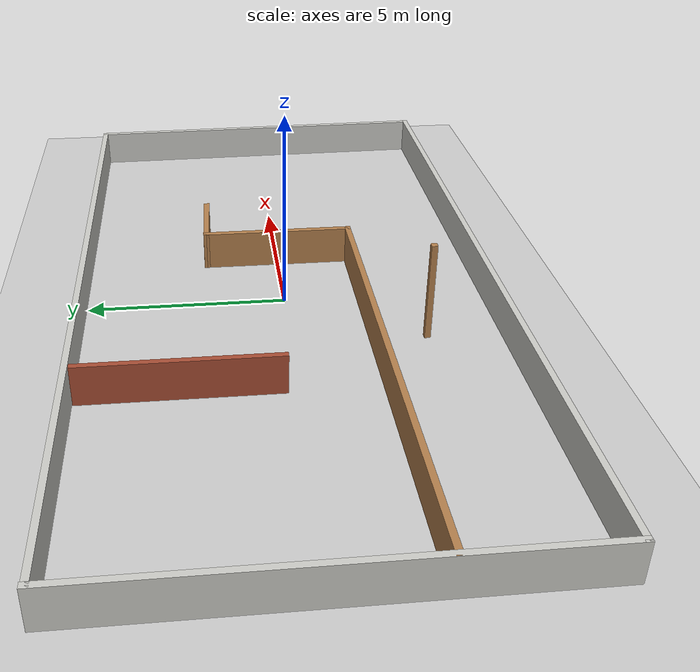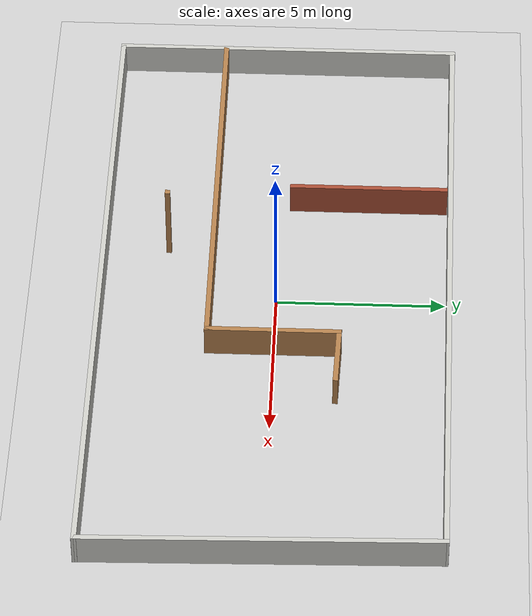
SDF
<?xml version="1.0" ?>
<sdf version="1.6">
  <world name="skid6x6_world">

    <!-- Add ground -->
    <include>
      <uri>model://ground_plane</uri>
    </include>

    <!-- Add sun -->
    <include>
      <uri>model://sun</uri>
    </include>

    <!-- Include your custom object (world2) -->
    <include>
      <uri>model://world1</uri>
      <name>world1</name>
      <pose>0 0 0 0 0 0</pose>
    </include>

    <!-- Optional scene lighting -->
    <scene>
      <ambient>0.4 0.4 0.4 1</ambient>
      <background>0.7 0.7 0.7 1</background>
      <shadows>true</shadows>
    </scene>

  </world>
</sdf>

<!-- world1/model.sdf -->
<sdf version='1.7'>
  <model name='world1'>
    <pose>-0.173189 -0.026811 0 0 -0 0</pose>
    <link name='Wall_12'>
      <collision name='Wall_12_Collision'>
        <geometry>
          <box>
            <size>10.5 0.15 1</size>
          </box>
        </geometry>
        <pose>0 0 0.5 0 -0 0</pose>
      </collision>
      <visual name='Wall_12_Visual'>
        <pose>0 0 0.5 0 -0 0</pose>
        <geometry>
          <box>
            <size>10.5 0.15 1</size>
          </box>
        </geometry>
        <material>
          <script>
            <uri>file://media/materials/scripts/gazebo.material</uri>
            <name>Gazebo/CeilingTiled</name>
          </script>
          <ambient>1 1 1 1</ambient>
        </material>
        <meta>
          <layer>0</layer>
        </meta>
      </visual>
      <pose>-10.0508 0.000811 0 0 -0 -1.5708</pose>
    </link>
    <link name='Wall_13'>
      <collision name='Wall_13_Collision'>
        <geometry>
          <box>
            <size>20.25 0.15 1</size>
          </box>
        </geometry>
        <pose>0 0 0.5 0 -0 0</pose>
      </collision>
      <visual name='Wall_13_Visual'>
        <pose>0 0 0.5 0 -0 0</pose>
        <geometry>
          <box>
            <size>20.25 0.15 1</size>
          </box>
        </geometry>
        <material>
          <script>
            <uri>file://media/materials/scripts/gazebo.material</uri>
            <name>Gazebo/CeilingTiled</name>
          </script>
          <ambient>1 1 1 1</ambient>
        </material>
        <meta>
          <layer>0</layer>
        </meta>
      </visual>
      <pose>-0.000811 -5.17419 0 0 -0 0</pose>
    </link>
    <link name='Wall_14'>
      <collision name='Wall_14_Collision'>
        <geometry>
          <box>
            <size>10.3915 0.15 1</size>
          </box>
        </geometry>
        <pose>0 0 0.5 0 -0 0</pose>
      </collision>
      <visual name='Wall_14_Visual'>
        <pose>0 0 0.5 0 -0 0</pose>
        <geometry>
          <box>
            <size>10.3915 0.15 1</size>
          </box>
        </geometry>
        <material>
          <script>
            <uri>file://media/materials/scripts/gazebo.material</uri>
            <name>Gazebo/CeilingTiled</name>
          </script>
          <ambient>1 1 1 1</ambient>
        </material>
        <meta>
          <layer>0</layer>
        </meta>
      </visual>
      <pose>9.93719 -0.054689 0 0 -0 1.59267</pose>
    </link>
    <link name='Wall_15'>
      <collision name='Wall_15_Collision'>
        <geometry>
          <box>
            <size>20.0061 0.15 1</size>
          </box>
        </geometry>
        <pose>0 0 0.5 0 -0 0</pose>
      </collision>
      <visual name='Wall_15_Visual'>
        <pose>0 0 0.5 0 -0 0</pose>
        <geometry>
          <box>
            <size>20.0061 0.15 1</size>
          </box>
        </geometry>
        <material>
          <script>
            <uri>file://media/materials/scripts/gazebo.material</uri>
            <name>Gazebo/CeilingTiled</name>
          </script>
          <ambient>1 1 1 1</ambient>
        </material>
        <meta>
          <layer>0</layer>
        </meta>
      </visual>
      <pose>-0.102811 5.11131 0 0 -0 3.13691</pose>
    </link>
    <link name='Wall_18'>
      <collision name='Wall_18_Collision'>
        <geometry>
          <box>
            <size>4.75 0.15 1</size>
          </box>
        </geometry>
        <pose>0 0 0.5 0 -0 0</pose>
      </collision>
      <visual name='Wall_18_Visual'>
        <pose>0 0 0.5 0 -0 0</pose>
        <geometry>
          <box>
            <size>4.75 0.15 1</size>
          </box>
        </geometry>
        <material>
          <script>
            <uri>file://media/materials/scripts/gazebo.material</uri>
            <name>Gazebo/Bricks</name>
          </script>
          <ambient>1 1 1 1</ambient>
        </material>
        <meta>
          <layer>0</layer>
        </meta>
      </visual>
      <pose>-3.92381 2.66281 0 0 -0 1.5708</pose>
    </link>
    <link name='Wall_20'>
      <collision name='Wall_20_Collision'>
        <geometry>
          <box>
            <size>12.25 0.15 1</size>
          </box>
        </geometry>
        <pose>0 0 0.5 0 -0 0</pose>
      </collision>
      <visual name='Wall_20_Visual'>
        <pose>0 0 0.5 0 -0 0</pose>
        <geometry>
          <box>
            <size>12.25 0.15 1</size>
          </box>
        </geometry>
        <material>
          <script>
            <uri>file://media/materials/scripts/gazebo.material</uri>
            <name>Gazebo/Wood</name>
          </script>
          <ambient>1 1 1 1</ambient>
        </material>
        <meta>
          <layer>0</layer>
        </meta>
      </visual>
      <pose>-3.99181 -1.93219 0 0 -0 0</pose>
    </link>
    <link name='Wall_21'>
      <collision name='Wall_21_Collision'>
        <geometry>
          <box>
            <size>4 0.15 1</size>
          </box>
        </geometry>
        <pose>0 0 0.5 0 -0 0</pose>
      </collision>
      <visual name='Wall_21_Visual'>
        <pose>0 0 0.5 0 -0 0</pose>
        <geometry>
          <box>
            <size>4 0.15 1</size>
          </box>
        </geometry>
        <material>
          <script>
            <uri>file://media/materials/scripts/gazebo.material</uri>
            <name>Gazebo/Wood</name>
          </script>
          <ambient>1 1 1 1</ambient>
        </material>
        <meta>
          <layer>0</layer>
        </meta>
      </visual>
      <pose>2.05819 -0.007189 0 0 -0 1.5708</pose>
    </link>
    <link name='Wall_22'>
      <collision name='Wall_22_Collision'>
        <geometry>
          <box>
            <size>2.00101 0.15 1</size>
          </box>
        </geometry>
        <pose>0 0 0.5 0 -0 0</pose>
      </collision>
      <visual name='Wall_22_Visual'>
        <pose>0 0 0.5 0 -0 0</pose>
        <geometry>
          <box>
            <size>2.00101 0.15 1</size>
          </box>
        </geometry>
        <material>
          <script>
            <uri>file://media/materials/scripts/gazebo.material</uri>
            <name>Gazebo/Wood</name>
          </script>
          <ambient>1 1 1 1</ambient>
        </material>
        <meta>
          <layer>0</layer>
        </meta>
      </visual>
      <pose>2.98319 1.88731 0 0 -0 -0.032961</pose>
    </link>
    <link name='Wall_8'>
      <collision name='Wall_8_Collision'>
        <geometry>
          <box>
            <size>0.15 0.15 2.5</size>
          </box>
        </geometry>
        <pose>0 0 1.25 0 -0 0</pose>
      </collision>
      <visual name='Wall_8_Visual'>
        <pose>0 0 1.25 0 -0 0</pose>
        <geometry>
          <box>
            <size>0.15 0.15 2.5</size>
          </box>
        </geometry>
        <material>
          <script>
            <uri>file://media/materials/scripts/gazebo.material</uri>
            <name>Gazebo/Wood</name>
          </script>
          <ambient>1 1 1 1</ambient>
        </material>
        <meta>
          <layer>0</layer>
        </meta>
      </visual>
      <pose>-2.00557 -3.27769 0 0 -0 0</pose>
    </link>
    <static>1</static>
  </model>
</sdf>
